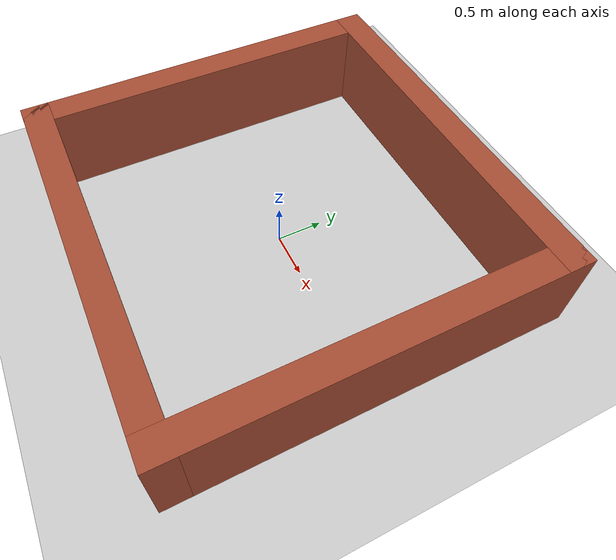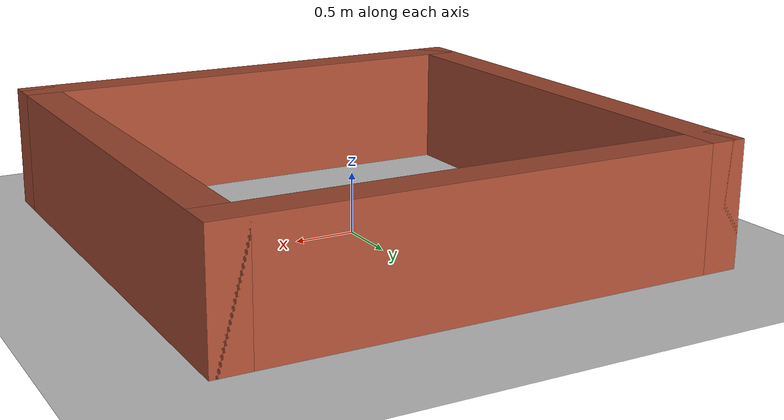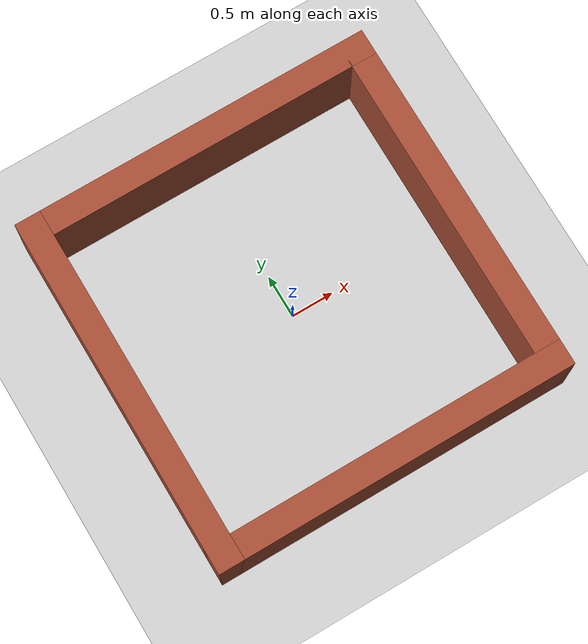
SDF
<sdf version="1.6">
 <world name="default">
  <light name="sun" type="directional">
   <pose>0 0 10 0 -0 0</pose>
   <diffuse>0.8 0.8 0.8 1</diffuse>
   <specular>0.1 0.1 0.1 1</specular>
   <attenuation>
    <range>1000</range>
    <constant>0.9</constant>
    <linear>0.01</linear>
    <quadratic>0.001</quadratic>
   </attenuation>
   <direction>-0.5 0.5 -1</direction>
  </light>
  <model name="ground_plane">
   <static>1</static>
   <link name="link">
    <collision name="collision">
     <geometry><plane><normal>0 0 1</normal><size>100 100</size></plane></geometry>
     <surface><friction><ode><mu>100</mu><mu2>50</mu2></ode></friction></surface>
    </collision>
    <visual name="visual">
     <cast_shadows>0</cast_shadows>
     <geometry><plane><normal>0 0 1</normal><size>100 100</size></plane></geometry>
     <material>
      <script><uri>file://media/materials/scripts/gazebo.material</uri><name>Gazebo/Grey</name></script>
     </material>
    </visual>
   </link>
  </model>
  <physics name="default_physics" default="0" type="ode">
   <real_time_update_rate>1000</real_time_update_rate>
   <max_step_size>0.001</max_step_size>
   <real_time_factor>1</real_time_factor>
   <ode>
    <solver>
     <type>quick</type>
     <iters>150</iters>
     <precon_iters>0</precon_iters>
     <sor>1.4</sor>
     <use_dynamic_moi_rescaling>1</use_dynamic_moi_rescaling>
    </solver>
    <constraints>
     <cfm>1e-05</cfm>
     <erp>0.2</erp>
     <contact_max_correcting_vel>2000</contact_max_correcting_vel>
     <contact_surface_layer>0.01</contact_surface_layer>
    </constraints>
   </ode>
  </physics>
  <gravity>0 0 -9.8</gravity>
  <magnetic_field>6e-06 2.3e-05 -4.2e-05</magnetic_field>
  <atmosphere type="adiabatic"/>
  <scene><ambient>0.4 0.4 0.4 1</ambient><background>0.7 0.7 0.7 1</background><shadows>1</shadows></scene>
  <spherical_coordinates>
   <surface_model>EARTH_WGS84</surface_model>
   <latitude_deg>0</latitude_deg>
   <longitude_deg>0</longitude_deg>
   <elevation>0</elevation>
   <heading_deg>0</heading_deg>
  </spherical_coordinates>
  <model name="wall_brick">
   <link name="Wall_0">
    <collision name="Wall_0_Collision">
     <geometry><box><size>4.2 0.3 1</size></box></geometry>
     <pose>0 0 0.5 0 -0 0</pose>
    </collision>
    <visual name="Wall_0_Visual">
     <pose>0 0 0.5 0 -0 0</pose>
     <geometry><box><size>4.2 0.3 1</size></box></geometry>
     <material>
      <script><uri>file://media/materials/scripts/gazebo.material</uri><name>Gazebo/Bricks</name></script>
      <ambient>1 1 1 1</ambient>
     </material>
    </visual>
    <pose>0 -1.95 0 0 -0 0</pose>
   </link>
   <link name="Wall_3">
    <collision name="Wall_3_Collision">
     <geometry><box><size>4.2 0.3 1</size></box></geometry>
     <pose>0 0 0.5 0 -0 0</pose>
    </collision>
    <visual name="Wall_3_Visual">
     <pose>0 0 0.5 0 -0 0</pose>
     <geometry><box><size>4.2 0.3 1</size></box></geometry>
     <material>
      <script><uri>file://media/materials/scripts/gazebo.material</uri><name>Gazebo/Bricks</name></script>
      <ambient>1 1 1 1</ambient>
     </material>
    </visual>
    <pose>0 1.95 0 0 -0 0</pose>
   </link>
   <link name="Wall_5">
    <collision name="Wall_5_Collision">
     <geometry><box><size>4.2 0.3 1</size></box></geometry>
     <pose>0 0 0.5 0 -0 0</pose>
    </collision>
    <visual name="Wall_5_Visual">
     <pose>0 0 0.5 0 -0 0</pose>
     <geometry><box><size>4.2 0.3 1</size></box></geometry>
     <material>
      <script><uri>file://media/materials/scripts/gazebo.material</uri><name>Gazebo/Bricks</name></script>
      <ambient>1 1 1 1</ambient>
     </material>
    </visual>
    <pose>-1.95 0 0 0 -0 1.5708</pose>
   </link>
   <link name="Wall_7">
    <collision name="Wall_7_Collision">
     <geometry><box><size>4.2 0.3 1</size></box></geometry>
     <pose>0 0 0.5 0 -0 0</pose>
    </collision>
    <visual name="Wall_7_Visual">
     <pose>0 0 0.5 0 -0 0</pose>
     <geometry><box><size>4.2 0.3 1</size></box></geometry>
     <material>
      <script><uri>file://media/materials/scripts/gazebo.material</uri><name>Gazebo/Bricks</name></script>
      <ambient>1 1 1 1</ambient>
     </material>
    </visual>
    <pose>1.95 0 0 0 0 -1.5708</pose>
   </link>
   <static>1</static>
  </model>
 </world>
</sdf>
